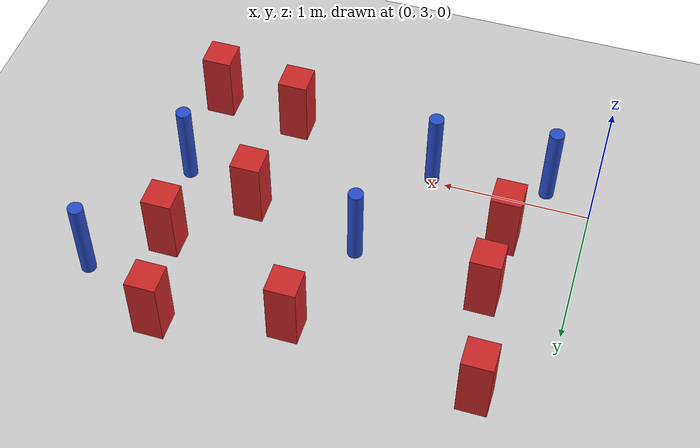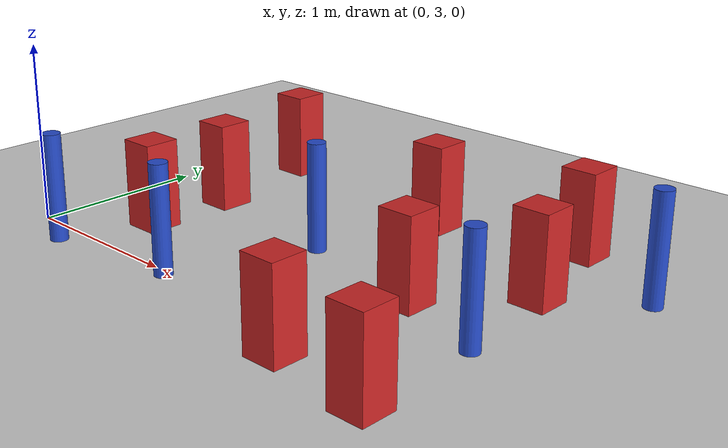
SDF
<sdf version="1.6">
 <world name="default">
  <model name="ground_plane">
   <static>1</static>
   <link name="link">
    <collision name="collision">
     <geometry><plane><normal>0 0 1</normal><size>100 100</size></plane></geometry>
     <surface><friction><ode><mu>100</mu><mu2>50</mu2></ode></friction></surface>
    </collision>
    <visual name="visual">
     <cast_shadows>0</cast_shadows>
     <geometry><plane><normal>0 0 1</normal><size>100 100</size></plane></geometry>
     <material>
      <ambient>1.0 1.0 1.0 1.0</ambient>
      <diffuse>0.8 0.8 0.8 1.0</diffuse>
      <specular>0.01 0.01 0.01 1.000000</specular>
     </material>
    </visual>
   </link>
  </model>
  <model name="pole_obstacle29">
   <static>true</static>
   <pose>1.42257281019 3.7378100286 2.88873142074e-08 -9.90536689791e-09 4.6021994899e-07 -1.20965994959e-07</pose>
   <link name="link">
    <pose>0 0 0.3 0 -0 0</pose>
    <inertial>
     <mass>1</mass>
     <inertia><ixx>0.145833</ixx><ixy>0</ixy><ixz>0</ixz><iyy>0.145833</iyy><iyz>0</iyz><izz>0.125</izz></inertia>
    </inertial>
    <collision name="collision">
     <geometry><cylinder><radius>0.05</radius><length>.6</length></cylinder></geometry>
    </collision>
    <visual name="visual">
     <geometry><cylinder><radius>0.05</radius><length>.6</length></cylinder></geometry>
     <material>
      <script><name>Gazebo/Blue</name><uri>file://media/materials/scripts/gazebo.material</uri></script>
     </material>
    </visual>
   </link>
  </model>
  <model name="square_post_obstacle51">
   <static>true</static>
   <pose>0.531060333218 3.87445394791 8.22691968438e-08 7.2212513382e-06 -7.54495500217e-07 2.29674213826e-05</pose>
   <link name="link">
    <pose>0 0 0.25 0 -0 0</pose>
    <inertial>
     <mass>100</mass>
     <inertia>
      <ixx>0.166667</ixx>
      <ixy>0</ixy>
      <ixz>0</ixz>
      <iyy>0.166667</iyy>
      <iyz>0</iyz>
      <izz>0.166667</izz>
     </inertia>
    </inertial>
    <collision name="collision"><geometry><box><size>.2 .2 .5</size></box></geometry></collision>
    <visual name="visual">
     <geometry><box><size>.2 .2 .5</size></box></geometry>
     <material>
      <script><name>Gazebo/Red</name><uri>file://media/materials/scripts/gazebo.material</uri></script>
     </material>
    </visual>
   </link>
  </model>
  <model name="pole_obstacle69">
   <static>true</static>
   <pose>3.05030731952 4.3581204059 2.88873142074e-08 -9.90536689859e-09 4.60219948989e-07 -1.20965994961e-07</pose>
   <link name="link">
    <pose>0 0 0.3 0 -0 0</pose>
    <inertial>
     <mass>1</mass>
     <inertia><ixx>0.145833</ixx><ixy>0</ixy><ixz>0</ixz><iyy>0.145833</iyy><iyz>0</iyz><izz>0.125</izz></inertia>
    </inertial>
    <collision name="collision">
     <geometry><cylinder><radius>0.05</radius><length>.6</length></cylinder></geometry>
    </collision>
    <visual name="visual">
     <geometry><cylinder><radius>0.05</radius><length>.6</length></cylinder></geometry>
     <material>
      <script><name>Gazebo/Blue</name><uri>file://media/materials/scripts/gazebo.material</uri></script>
     </material>
    </visual>
   </link>
  </model>
  <model name="square_post_obstacle86">
   <static>true</static>
   <pose>2.70845389974 2.7022897072 8.22691968438e-08 7.2212513382e-06 -7.54495500217e-07 2.29674213826e-05</pose>
   <link name="link">
    <pose>0 0 0.25 0 -0 0</pose>
    <inertial>
     <mass>100</mass>
     <inertia>
      <ixx>0.166667</ixx>
      <ixy>0</ixy>
      <ixz>0</ixz>
      <iyy>0.166667</iyy>
      <iyz>0</iyz>
      <izz>0.166667</izz>
     </inertia>
    </inertial>
    <collision name="collision"><geometry><box><size>.2 .2 .5</size></box></geometry></collision>
    <visual name="visual">
     <geometry><box><size>.2 .2 .5</size></box></geometry>
     <material>
      <script><name>Gazebo/Red</name><uri>file://media/materials/scripts/gazebo.material</uri></script>
     </material>
    </visual>
   </link>
  </model>
  <model name="square_post_obstacle87">
   <static>true</static>
   <pose>1.66176385393 4.43725755081 8.22691968438e-08 7.2212513382e-06 -7.54495500217e-07 2.29674213826e-05</pose>
   <link name="link">
    <pose>0 0 0.25 0 -0 0</pose>
    <inertial>
     <mass>100</mass>
     <inertia>
      <ixx>0.166667</ixx>
      <ixy>0</ixy>
      <ixz>0</ixz>
      <iyy>0.166667</iyy>
      <iyz>0</iyz>
      <izz>0.166667</izz>
     </inertia>
    </inertial>
    <collision name="collision"><geometry><box><size>.2 .2 .5</size></box></geometry></collision>
    <visual name="visual">
     <geometry><box><size>.2 .2 .5</size></box></geometry>
     <material>
      <script><name>Gazebo/Red</name><uri>file://media/materials/scripts/gazebo.material</uri></script>
     </material>
    </visual>
   </link>
  </model>
  <model name="square_post_obstacle128">
   <static>true</static>
   <pose>2.47648640576 4.64615010845 8.22691968438e-08 7.2212513382e-06 -7.54495500217e-07 2.29674213826e-05</pose>
   <link name="link">
    <pose>0 0 0.25 0 -0 0</pose>
    <inertial>
     <mass>100</mass>
     <inertia>
      <ixx>0.166667</ixx>
      <ixy>0</ixy>
      <ixz>0</ixz>
      <iyy>0.166667</iyy>
      <iyz>0</iyz>
      <izz>0.166667</izz>
     </inertia>
    </inertial>
    <collision name="collision"><geometry><box><size>.2 .2 .5</size></box></geometry></collision>
    <visual name="visual">
     <geometry><box><size>.2 .2 .5</size></box></geometry>
     <material>
      <script><name>Gazebo/Red</name><uri>file://media/materials/scripts/gazebo.material</uri></script>
     </material>
    </visual>
   </link>
  </model>
  <model name="square_post_obstacle133">
   <static>true</static>
   <pose>2.13171599648 2.77237591949 8.22691968438e-08 7.2212513382e-06 -7.54495500217e-07 2.29674213826e-05</pose>
   <link name="link">
    <pose>0 0 0.25 0 -0 0</pose>
    <inertial>
     <mass>100</mass>
     <inertia>
      <ixx>0.166667</ixx>
      <ixy>0</ixy>
      <ixz>0</ixz>
      <iyy>0.166667</iyy>
      <iyz>0</iyz>
      <izz>0.166667</izz>
     </inertia>
    </inertial>
    <collision name="collision"><geometry><box><size>.2 .2 .5</size></box></geometry></collision>
    <visual name="visual">
     <geometry><box><size>.2 .2 .5</size></box></geometry>
     <material>
      <script><name>Gazebo/Red</name><uri>file://media/materials/scripts/gazebo.material</uri></script>
     </material>
    </visual>
   </link>
  </model>
  <model name="square_post_obstacle142">
   <static>true</static>
   <pose>0.413356632766 4.60096449332 8.22691968438e-08 7.2212513382e-06 -7.54495500217e-07 2.29674213826e-05</pose>
   <link name="link">
    <pose>0 0 0.25 0 -0 0</pose>
    <inertial>
     <mass>100</mass>
     <inertia>
      <ixx>0.166667</ixx>
      <ixy>0</ixy>
      <ixz>0</ixz>
      <iyy>0.166667</iyy>
      <iyz>0</iyz>
      <izz>0.166667</izz>
     </inertia>
    </inertial>
    <collision name="collision"><geometry><box><size>.2 .2 .5</size></box></geometry></collision>
    <visual name="visual">
     <geometry><box><size>.2 .2 .5</size></box></geometry>
     <material>
      <script><name>Gazebo/Red</name><uri>file://media/materials/scripts/gazebo.material</uri></script>
     </material>
    </visual>
   </link>
  </model>
  <model name="square_post_obstacle144">
   <static>true</static>
   <pose>2.62752429421 4.01897842473 8.22691968438e-08 7.22125133819e-06 -7.54495500217e-07 2.29674213826e-05</pose>
   <link name="link">
    <pose>0 0 0.25 0 -0 0</pose>
    <inertial>
     <mass>100</mass>
     <inertia>
      <ixx>0.166667</ixx>
      <ixy>0</ixy>
      <ixz>0</ixz>
      <iyy>0.166667</iyy>
      <iyz>0</iyz>
      <izz>0.166667</izz>
     </inertia>
    </inertial>
    <collision name="collision"><geometry><box><size>.2 .2 .5</size></box></geometry></collision>
    <visual name="visual">
     <geometry><box><size>.2 .2 .5</size></box></geometry>
     <material>
      <script><name>Gazebo/Red</name><uri>file://media/materials/scripts/gazebo.material</uri></script>
     </material>
    </visual>
   </link>
  </model>
  <model name="pole_obstacle169">
   <static>true</static>
   <pose>2.70995373998 3.39726237616 2.88873142074e-08 -9.90536690232e-09 4.6021994898e-07 -1.20965994968e-07</pose>
   <link name="link">
    <pose>0 0 0.3 0 -0 0</pose>
    <inertial>
     <mass>1</mass>
     <inertia><ixx>0.145833</ixx><ixy>0</ixy><ixz>0</ixz><iyy>0.145833</iyy><iyz>0</iyz><izz>0.125</izz></inertia>
    </inertial>
    <collision name="collision">
     <geometry><cylinder><radius>0.05</radius><length>.6</length></cylinder></geometry>
    </collision>
    <visual name="visual">
     <geometry><cylinder><radius>0.05</radius><length>.6</length></cylinder></geometry>
     <material>
      <script><name>Gazebo/Blue</name><uri>file://media/materials/scripts/gazebo.material</uri></script>
     </material>
    </visual>
   </link>
  </model>
  <model name="pole_obstacle175">
   <static>true</static>
   <pose>1.0971287201 2.96953172808 2.88873142074e-08 -9.90536689791e-09 4.6021994899e-07 -1.20965994959e-07</pose>
   <link name="link">
    <pose>0 0 0.3 0 -0 0</pose>
    <inertial>
     <mass>1</mass>
     <inertia><ixx>0.145833</ixx><ixy>0</ixy><ixz>0</ixz><iyy>0.145833</iyy><iyz>0</iyz><izz>0.125</izz></inertia>
    </inertial>
    <collision name="collision">
     <geometry><cylinder><radius>0.05</radius><length>.6</length></cylinder></geometry>
    </collision>
    <visual name="visual">
     <geometry><cylinder><radius>0.05</radius><length>.6</length></cylinder></geometry>
     <material>
      <script><name>Gazebo/Blue</name><uri>file://media/materials/scripts/gazebo.material</uri></script>
     </material>
    </visual>
   </link>
  </model>
  <model name="square_post_obstacle185">
   <static>true</static>
   <pose>0.516034162001 3.36219640676 8.22691968438e-08 7.2212513382e-06 -7.54495500217e-07 2.29674213826e-05</pose>
   <link name="link">
    <pose>0 0 0.25 0 -0 0</pose>
    <inertial>
     <mass>100</mass>
     <inertia>
      <ixx>0.166667</ixx>
      <ixy>0</ixy>
      <ixz>0</ixz>
      <iyy>0.166667</iyy>
      <iyz>0</iyz>
      <izz>0.166667</izz>
     </inertia>
    </inertial>
    <collision name="collision"><geometry><box><size>.2 .2 .5</size></box></geometry></collision>
    <visual name="visual">
     <geometry><box><size>.2 .2 .5</size></box></geometry>
     <material>
      <script><name>Gazebo/Red</name><uri>file://media/materials/scripts/gazebo.material</uri></script>
     </material>
    </visual>
   </link>
  </model>
  <model name="pole_obstacle198">
   <static>true</static>
   <pose>0.315963025718 2.86845633072 2.88873142074e-08 -9.90536689663e-09 4.60219948993e-07 -1.20965994959e-07</pose>
   <link name="link">
    <pose>0 0 0.3 0 -0 0</pose>
    <inertial>
     <mass>1</mass>
     <inertia><ixx>0.145833</ixx><ixy>0</ixy><ixz>0</ixz><iyy>0.145833</iyy><iyz>0</iyz><izz>0.125</izz></inertia>
    </inertial>
    <collision name="collision">
     <geometry><cylinder><radius>0.05</radius><length>.6</length></cylinder></geometry>
    </collision>
    <visual name="visual">
     <geometry><cylinder><radius>0.05</radius><length>.6</length></cylinder></geometry>
     <material>
      <script><name>Gazebo/Blue</name><uri>file://media/materials/scripts/gazebo.material</uri></script>
     </material>
    </visual>
   </link>
  </model>
  <model name="square_post_obstacle206">
   <static>true</static>
   <pose>2.19339219277 3.57032923973 8.22691968438e-08 7.2212513382e-06 -7.54495500217e-07 2.29674213826e-05</pose>
   <link name="link">
    <pose>0 0 0.25 0 -0 0</pose>
    <inertial>
     <mass>100</mass>
     <inertia>
      <ixx>0.166667</ixx>
      <ixy>0</ixy>
      <ixz>0</ixz>
      <iyy>0.166667</iyy>
      <iyz>0</iyz>
      <izz>0.166667</izz>
     </inertia>
    </inertial>
    <collision name="collision"><geometry><box><size>.2 .2 .5</size></box></geometry></collision>
    <visual name="visual">
     <geometry><box><size>.2 .2 .5</size></box></geometry>
     <material>
      <script><name>Gazebo/Red</name><uri>file://media/materials/scripts/gazebo.material</uri></script>
     </material>
    </visual>
   </link>
  </model>
 </world>
</sdf>
